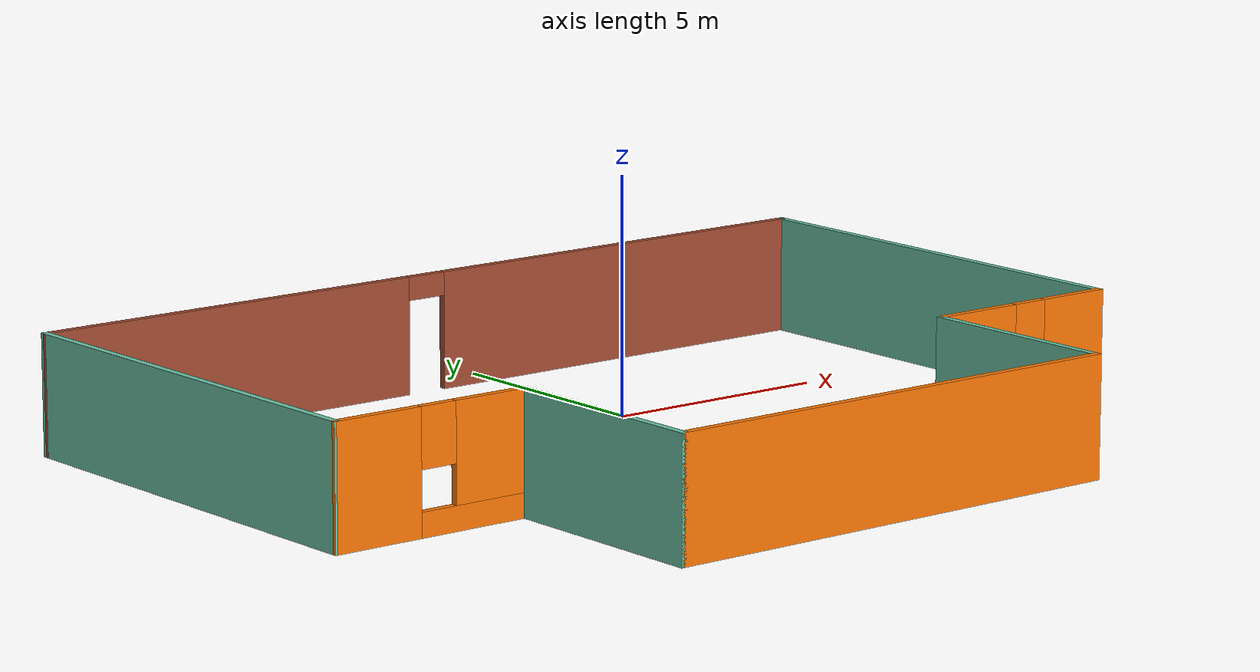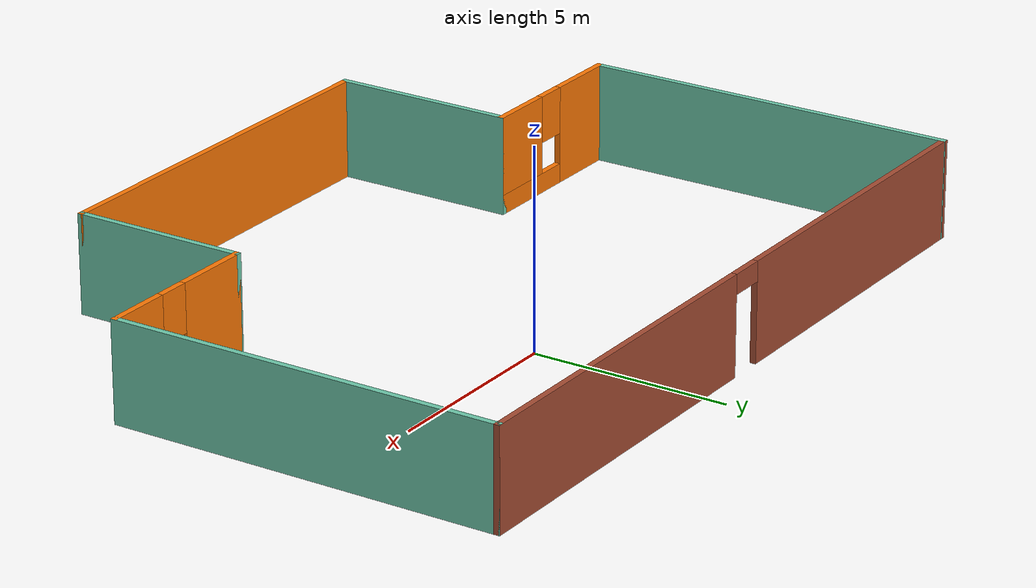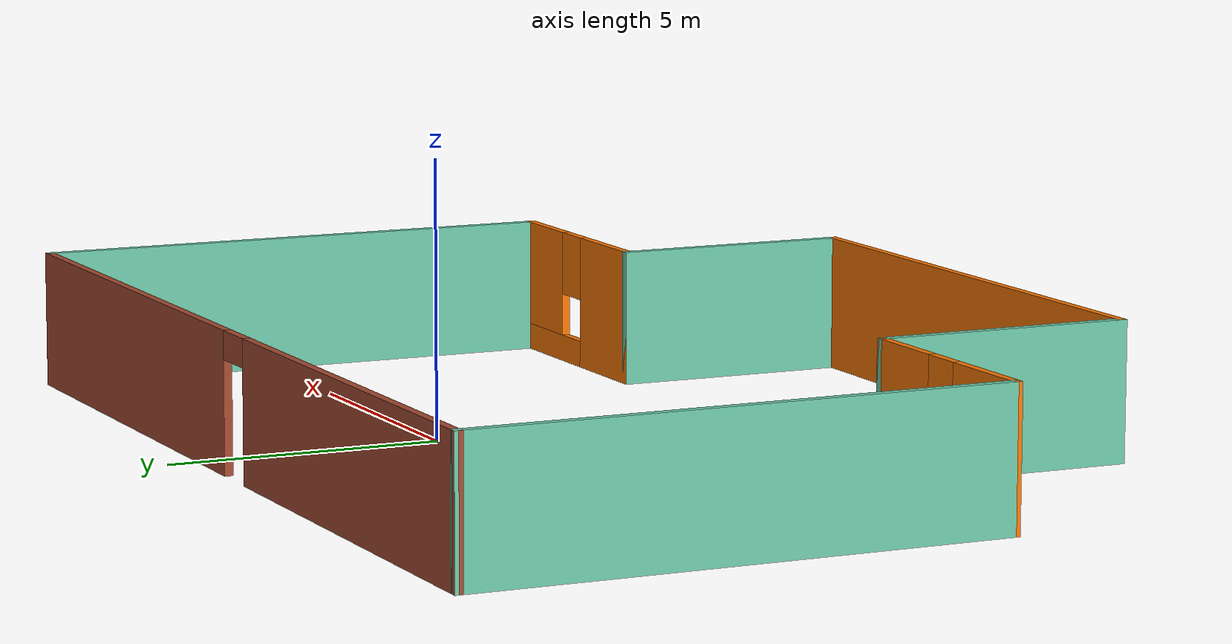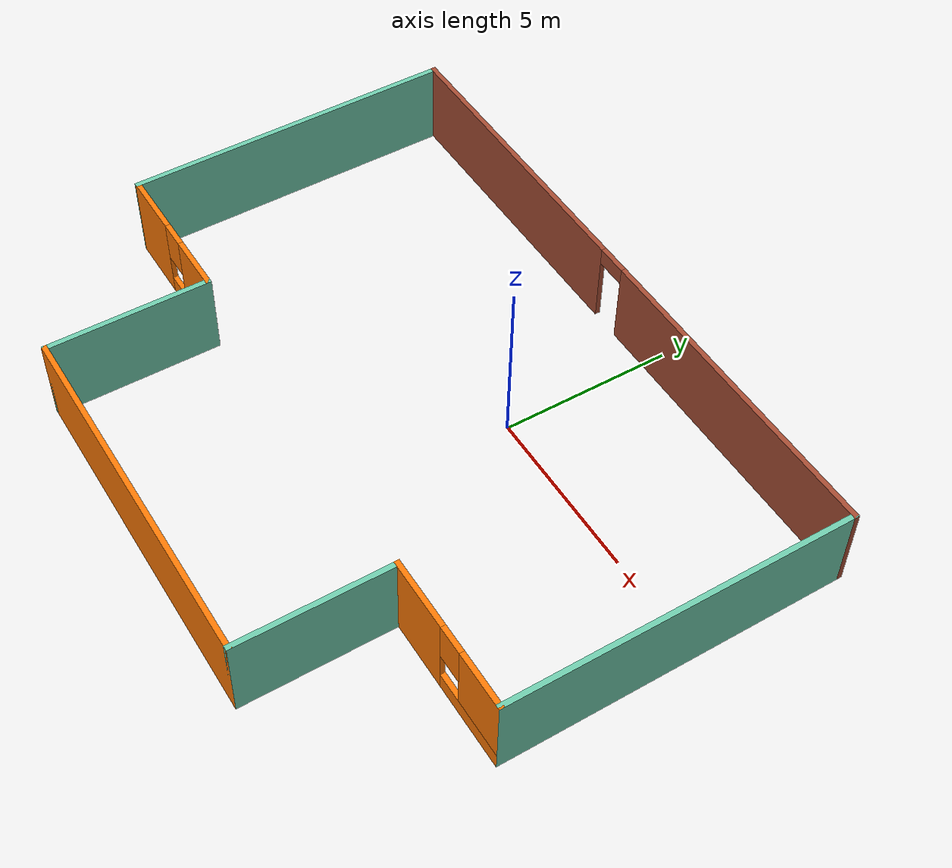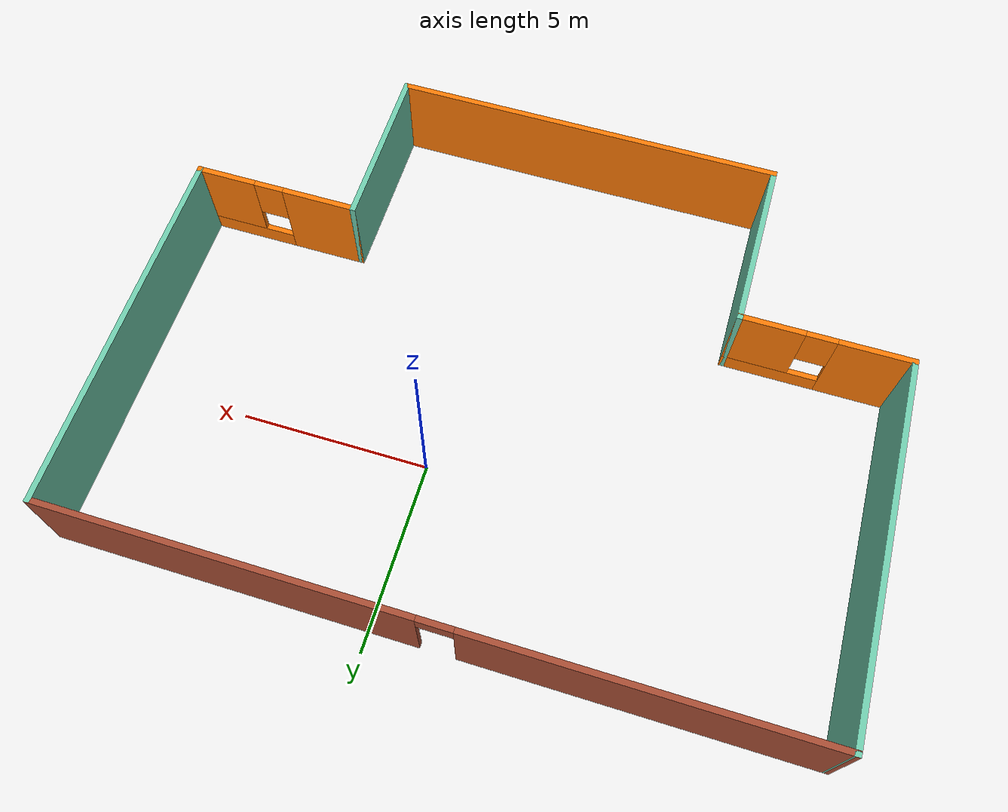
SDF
<?xml version='1.0'?>
<sdf version='1.6'>
  <model name='building1'>
    <pose frame=''>-1.46019 -2.72894 0 0 -0 0</pose>
    <link name='Wall_11'>
      <pose frame=''>-7.3252 -2.5002 0 0 -0 0</pose>
      <visual name='Wall_11_Visual_0'>
        <pose frame=''>-1.26869 0 1.25 0 -0 0</pose>
        <geometry>
          <box>
            <size>1.96262 0.15 2.5</size>
          </box>
        </geometry>
        <material>
          <script>
            <uri>file://media/materials/scripts/gazebo.material</uri>
            <name>Gazebo/Grey</name>
          </script>
          <ambient>0.996078 0.47451 0.0196078 1</ambient>
        </material>
        <meta>
          <layer>0</layer>
        </meta>
      </visual>
      <collision name='Wall_11_Collision_0'>
        <geometry>
          <box>
            <size>1.96262 0.15 2.5</size>
          </box>
        </geometry>
        <pose frame=''>-1.26869 0 1.25 0 -0 0</pose>
      </collision>
      <visual name='Wall_11_Visual_1'>
        <pose frame=''>0.981308 0 0.25 0 -0 0</pose>
        <geometry>
          <box>
            <size>2.53738 0.15 0.5</size>
          </box>
        </geometry>
        <material>
          <script>
            <uri>file://media/materials/scripts/gazebo.material</uri>
            <name>Gazebo/Grey</name>
          </script>
          <ambient>0.996078 0.47451 0.0196078 1</ambient>
        </material>
        <meta>
          <layer>0</layer>
        </meta>
      </visual>
      <collision name='Wall_11_Collision_1'>
        <geometry>
          <box>
            <size>2.53738 0.15 0.5</size>
          </box>
        </geometry>
        <pose frame=''>0.981308 0 0.25 0 -0 0</pose>
      </collision>
      <visual name='Wall_11_Visual_2'>
        <pose frame=''>1.38131 0 1.5 0 -0 0</pose>
        <geometry>
          <box>
            <size>1.73738 0.15 2</size>
          </box>
        </geometry>
        <material>
          <script>
            <uri>file://media/materials/scripts/gazebo.material</uri>
            <name>Gazebo/Grey</name>
          </script>
          <ambient>0.996078 0.47451 0.0196078 1</ambient>
        </material>
        <meta>
          <layer>0</layer>
        </meta>
      </visual>
      <collision name='Wall_11_Collision_2'>
        <geometry>
          <box>
            <size>1.73738 0.15 2</size>
          </box>
        </geometry>
        <pose frame=''>1.38131 0 1.5 0 -0 0</pose>
      </collision>
      <visual name='Wall_11_Visual_3'>
        <pose frame=''>0.112617 0 1.9 0 -0 0</pose>
        <geometry>
          <box>
            <size>0.8 0.15 1.2</size>
          </box>
        </geometry>
        <material>
          <script>
            <uri>file://media/materials/scripts/gazebo.material</uri>
            <name>Gazebo/Grey</name>
          </script>
          <ambient>0.996078 0.47451 0.0196078 1</ambient>
        </material>
        <meta>
          <layer>0</layer>
        </meta>
      </visual>
      <collision name='Wall_11_Collision_3'>
        <geometry>
          <box>
            <size>0.8 0.15 1.2</size>
          </box>
        </geometry>
        <pose frame=''>0.112617 0 1.9 0 -0 0</pose>
      </collision>
    </link>
    <link name='Wall_13'>
      <collision name='Wall_13_Collision'>
        <geometry>
          <box>
            <size>4.75 0.15 2.5</size>
          </box>
        </geometry>
        <pose frame=''>0 0 1.25 0 -0 0</pose>
      </collision>
      <visual name='Wall_13_Visual'>
        <pose frame=''>0 0 1.25 0 -0 0</pose>
        <geometry>
          <box>
            <size>4.75 0.15 2.5</size>
          </box>
        </geometry>
        <material>
          <script>
            <uri>file://media/materials/scripts/gazebo.material</uri>
            <name>Gazebo/Grey</name>
          </script>
          <ambient>0.435294 0.796078 0.67451 1</ambient>
        </material>
        <meta>
          <layer>0</layer>
        </meta>
      </visual>
      <pose frame=''>-5.1502 -4.8002 0 0 0 -1.5708</pose>
    </link>
    <link name='Wall_16'>
      <collision name='Wall_16_Collision'>
        <geometry>
          <box>
            <size>10.5 0.15 2.5</size>
          </box>
        </geometry>
        <pose frame=''>0 0 1.25 0 -0 0</pose>
      </collision>
      <visual name='Wall_16_Visual'>
        <pose frame=''>0 0 1.25 0 -0 0</pose>
        <geometry>
          <box>
            <size>10.5 0.15 2.5</size>
          </box>
        </geometry>
        <material>
          <script>
            <uri>file://media/materials/scripts/gazebo.material</uri>
            <name>Gazebo/Grey</name>
          </script>
          <ambient>0.996078 0.47451 0.0196078 1</ambient>
        </material>
        <meta>
          <layer>0</layer>
        </meta>
      </visual>
      <pose frame=''>0.024804 -7.1002 0 0 -0 0</pose>
    </link>
    <link name='Wall_17'>
      <collision name='Wall_17_Collision'>
        <geometry>
          <box>
            <size>4.5 0.15 2.5</size>
          </box>
        </geometry>
        <pose frame=''>0 0 1.25 0 -0 0</pose>
      </collision>
      <visual name='Wall_17_Visual'>
        <pose frame=''>0 0 1.25 0 -0 0</pose>
        <geometry>
          <box>
            <size>4.5 0.15 2.5</size>
          </box>
        </geometry>
        <material>
          <script>
            <uri>file://media/materials/scripts/gazebo.material</uri>
            <name>Gazebo/Grey</name>
          </script>
          <ambient>0.435294 0.796078 0.67451 1</ambient>
        </material>
        <meta>
          <layer>0</layer>
        </meta>
      </visual>
      <pose frame=''>5.1998 -4.9252 0 0 -0 1.5708</pose>
    </link>
    <link name='Wall_18'>
      <pose frame=''>7.3748 -2.7502 0 0 -0 0</pose>
      <visual name='Wall_18_Visual_0'>
        <pose frame=''>-1.22384 0 1.25 0 -0 0</pose>
        <geometry>
          <box>
            <size>2.05233 0.15 2.5</size>
          </box>
        </geometry>
        <material>
          <script>
            <uri>file://media/materials/scripts/gazebo.material</uri>
            <name>Gazebo/Grey</name>
          </script>
          <ambient>0.996078 0.47451 0.0196078 1</ambient>
        </material>
        <meta>
          <layer>0</layer>
        </meta>
      </visual>
      <collision name='Wall_18_Collision_0'>
        <geometry>
          <box>
            <size>2.05233 0.15 2.5</size>
          </box>
        </geometry>
        <pose frame=''>-1.22384 0 1.25 0 -0 0</pose>
      </collision>
      <visual name='Wall_18_Visual_1'>
        <pose frame=''>1.02616 0 0.25 0 -0 0</pose>
        <geometry>
          <box>
            <size>2.44767 0.15 0.5</size>
          </box>
        </geometry>
        <material>
          <script>
            <uri>file://media/materials/scripts/gazebo.material</uri>
            <name>Gazebo/Grey</name>
          </script>
          <ambient>0.996078 0.47451 0.0196078 1</ambient>
        </material>
        <meta>
          <layer>0</layer>
        </meta>
      </visual>
      <collision name='Wall_18_Collision_1'>
        <geometry>
          <box>
            <size>2.44767 0.15 0.5</size>
          </box>
        </geometry>
        <pose frame=''>1.02616 0 0.25 0 -0 0</pose>
      </collision>
      <visual name='Wall_18_Visual_2'>
        <pose frame=''>1.42616 0 1.5 0 -0 0</pose>
        <geometry>
          <box>
            <size>1.64767 0.15 2</size>
          </box>
        </geometry>
        <material>
          <script>
            <uri>file://media/materials/scripts/gazebo.material</uri>
            <name>Gazebo/Grey</name>
          </script>
          <ambient>0.996078 0.47451 0.0196078 1</ambient>
        </material>
        <meta>
          <layer>0</layer>
        </meta>
      </visual>
      <collision name='Wall_18_Collision_2'>
        <geometry>
          <box>
            <size>1.64767 0.15 2</size>
          </box>
        </geometry>
        <pose frame=''>1.42616 0 1.5 0 -0 0</pose>
      </collision>
      <visual name='Wall_18_Visual_3'>
        <pose frame=''>0.202328 0 1.9 0 -0 0</pose>
        <geometry>
          <box>
            <size>0.8 0.15 1.2</size>
          </box>
        </geometry>
        <material>
          <script>
            <uri>file://media/materials/scripts/gazebo.material</uri>
            <name>Gazebo/Grey</name>
          </script>
          <ambient>0.996078 0.47451 0.0196078 1</ambient>
        </material>
        <meta>
          <layer>0</layer>
        </meta>
      </visual>
      <collision name='Wall_18_Collision_3'>
        <geometry>
          <box>
            <size>0.8 0.15 1.2</size>
          </box>
        </geometry>
        <pose frame=''>0.202328 0 1.9 0 -0 0</pose>
      </collision>
    </link>
    <link name='Wall_20'>
      <collision name='Wall_20_Collision'>
        <geometry>
          <box>
            <size>10 0.15 2.5</size>
          </box>
        </geometry>
        <pose frame=''>0 0 1.25 0 -0 0</pose>
      </collision>
      <visual name='Wall_20_Visual'>
        <pose frame=''>0 0 1.25 0 -0 0</pose>
        <geometry>
          <box>
            <size>10 0.15 2.5</size>
          </box>
        </geometry>
        <material>
          <script>
            <uri>file://media/materials/scripts/gazebo.material</uri>
            <name>Gazebo/Grey</name>
          </script>
          <ambient>0.435294 0.796078 0.67451 1</ambient>
        </material>
        <meta>
          <layer>0</layer>
        </meta>
      </visual>
      <pose frame=''>9.55 2.17487 0 0 -0 1.57076</pose>
    </link>
    <link name='Wall_21'>
      <pose frame=''>0.000192 7.09994 0 0 -0 3.14159</pose>
      <visual name='Wall_21_Visual_0'>
        <pose frame=''>-4.88933 0 1.25 0 -0 0</pose>
        <geometry>
          <box>
            <size>9.47133 0.15 2.5</size>
          </box>
        </geometry>
        <material>
          <script>
            <uri>file://media/materials/scripts/gazebo.material</uri>
            <name>Gazebo/Bricks</name>
          </script>
          <ambient>1 1 1 1</ambient>
        </material>
        <meta>
          <layer>0</layer>
        </meta>
      </visual>
      <collision name='Wall_21_Collision_0'>
        <geometry>
          <box>
            <size>9.47133 0.15 2.5</size>
          </box>
        </geometry>
        <pose frame=''>-4.88933 0 1.25 0 -0 0</pose>
      </collision>
      <visual name='Wall_21_Visual_1'>
        <pose frame=''>5.18567 0 1.25 0 -0 0</pose>
        <geometry>
          <box>
            <size>8.87867 0.15 2.5</size>
          </box>
        </geometry>
        <material>
          <script>
            <uri>file://media/materials/scripts/gazebo.material</uri>
            <name>Gazebo/Bricks</name>
          </script>
          <ambient>1 1 1 1</ambient>
        </material>
        <meta>
          <layer>0</layer>
        </meta>
      </visual>
      <collision name='Wall_21_Collision_1'>
        <geometry>
          <box>
            <size>8.87867 0.15 2.5</size>
          </box>
        </geometry>
        <pose frame=''>5.18567 0 1.25 0 -0 0</pose>
      </collision>
      <visual name='Wall_21_Visual_2'>
        <pose frame=''>0.296331 0 2.25 0 -0 0</pose>
        <geometry>
          <box>
            <size>0.9 0.15 0.5</size>
          </box>
        </geometry>
        <material>
          <script>
            <uri>file://media/materials/scripts/gazebo.material</uri>
            <name>Gazebo/Bricks</name>
          </script>
          <ambient>1 1 1 1</ambient>
        </material>
        <meta>
          <layer>0</layer>
        </meta>
      </visual>
      <collision name='Wall_21_Collision_2'>
        <geometry>
          <box>
            <size>0.9 0.15 0.5</size>
          </box>
        </geometry>
        <pose frame=''>0.296331 0 2.25 0 -0 0</pose>
      </collision>
    </link>
    <link name='Wall_25'>
      <collision name='Wall_25_Collision'>
        <geometry>
          <box>
            <size>9.75 0.15 2.5</size>
          </box>
        </geometry>
        <pose frame=''>0 0 1.25 0 -0 0</pose>
      </collision>
      <visual name='Wall_25_Visual'>
        <pose frame=''>0 0 1.25 0 -0 0</pose>
        <geometry>
          <box>
            <size>9.75 0.15 2.5</size>
          </box>
        </geometry>
        <material>
          <script>
            <uri>file://media/materials/scripts/gazebo.material</uri>
            <name>Gazebo/Grey</name>
          </script>
          <ambient>0.435294 0.796078 0.67451 1</ambient>
        </material>
        <meta>
          <layer>0</layer>
        </meta>
      </visual>
      <pose frame=''>-9.525 2.29987 0 0 0 -1.56563</pose>
    </link>
    <static>1</static>
  </model>
</sdf>
